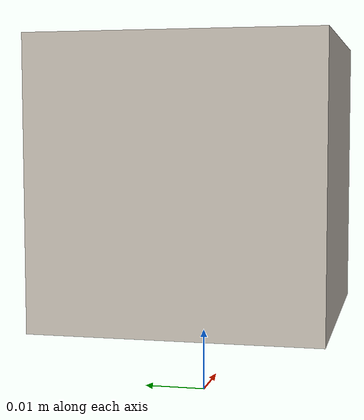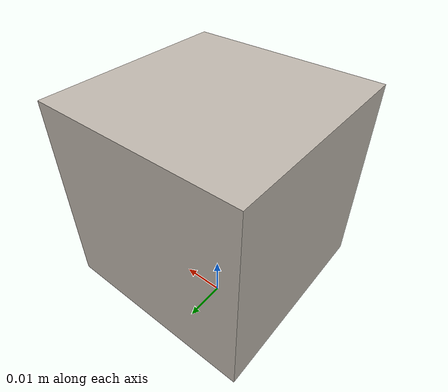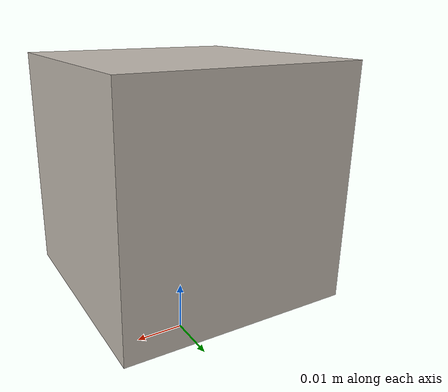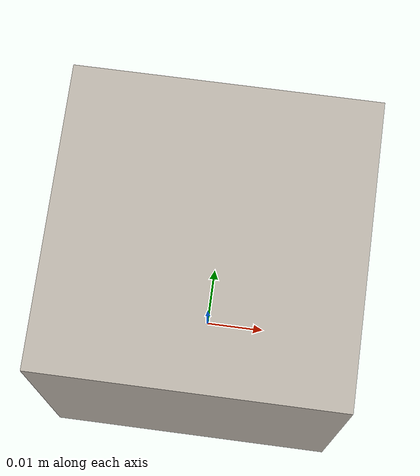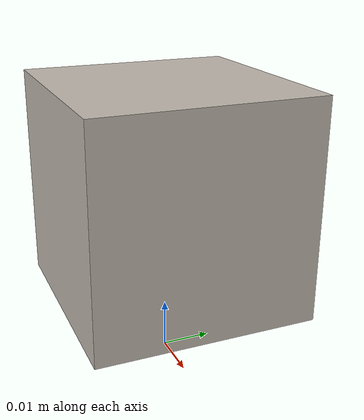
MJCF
<mujoco>
  <asset>
    <texture name="cube" type="cube"
             fileup="assets/fileup.png" fileback="assets/fileback.png"
             filedown="assets/filedown.png" filefront="assets/filefront.png"
             fileleft="assets/fileleft.png" fileright="assets/fileright.png"/>
    <material name="cube" texture="cube"/>
    <texture name="graycube" type="cube" fileup="assets/grayup.png"
             fileback="assets/grayback.png" filedown="assets/graydown.png"
             filefront="assets/grayfront.png" fileleft="assets/grayleft.png"
             fileright="assets/grayright.png"/>
    <material name="graycube" texture="graycube"/>
  </asset>
  <worldbody>
    <light pos="0 0 1"/>
    <body name="cube" pos="0.0 0.0 0.035" quat="1 0 0 0">
      <freejoint/>
      <geom name="cube" type="box" size=".022 .022 .022" mass=".126" material="cube"/>
    </body>
  </worldbody>

   <sensor>
        <framepos name="trace0" objtype="body" objname="cube"/>
        <framepos name="cube_position" objtype="body" objname="cube"/>
        <framequat name="cube_orientation" objtype="body" objname="cube"/>
        <framelinvel name="cube_linear_velocity" objtype="body" objname="cube"/>
        <frameangvel name="cube_angular_velocity" objtype="body" objname="cube"/>
    </sensor>
</mujoco>
